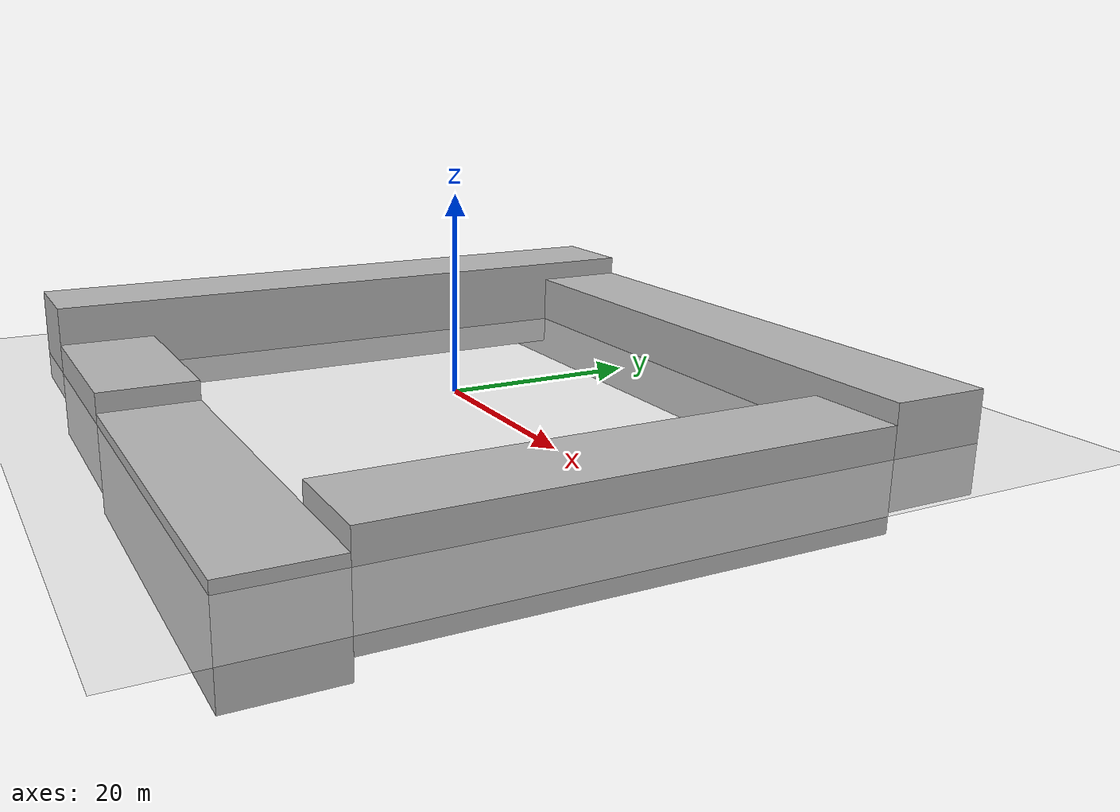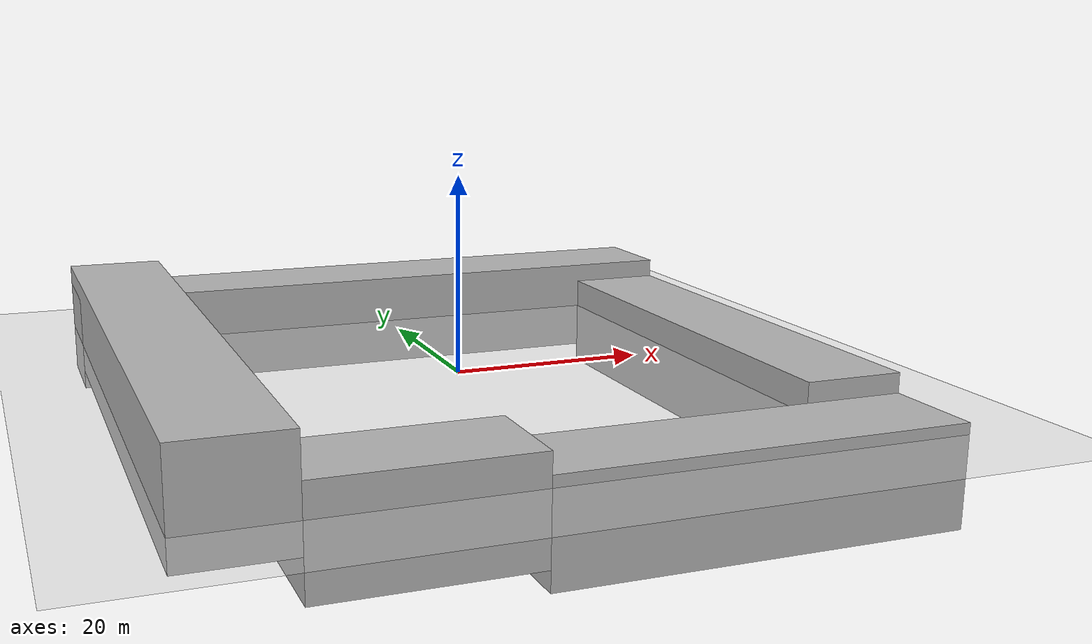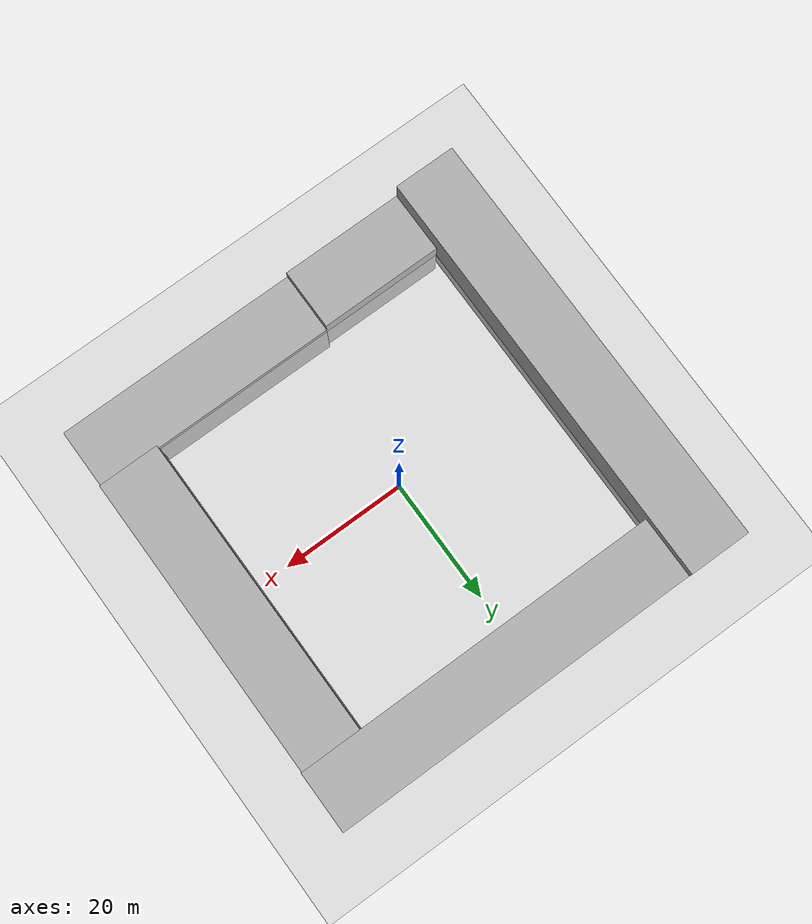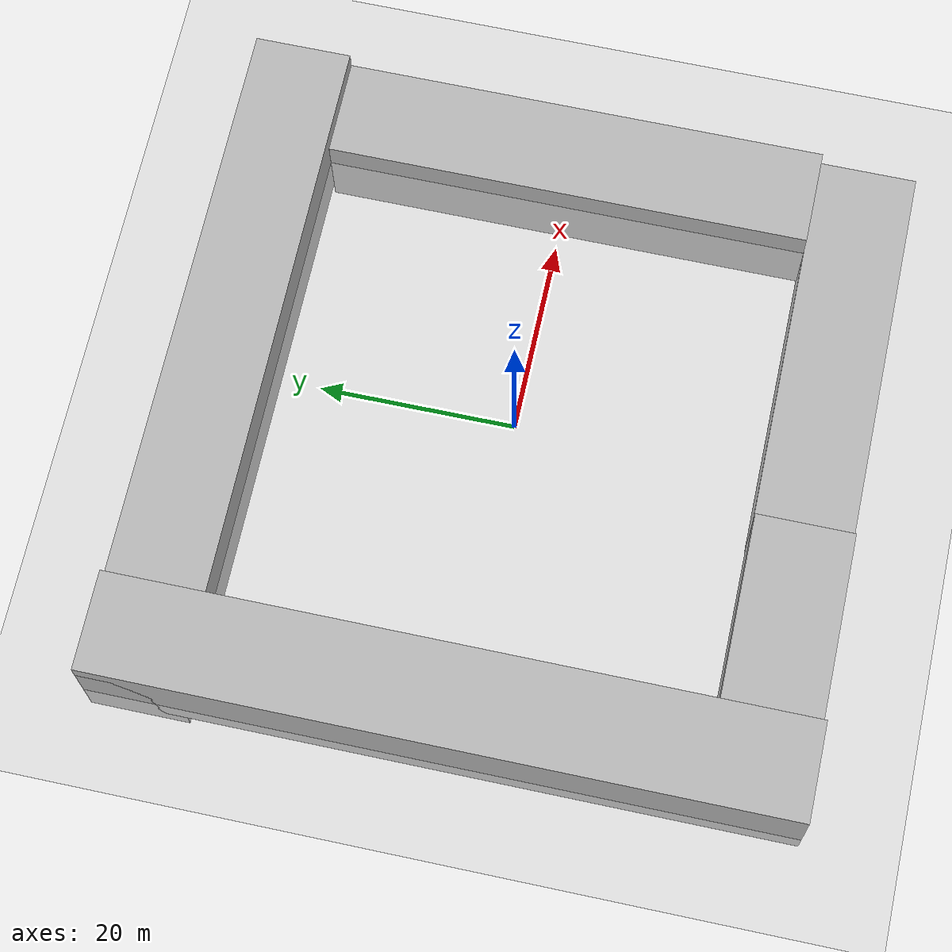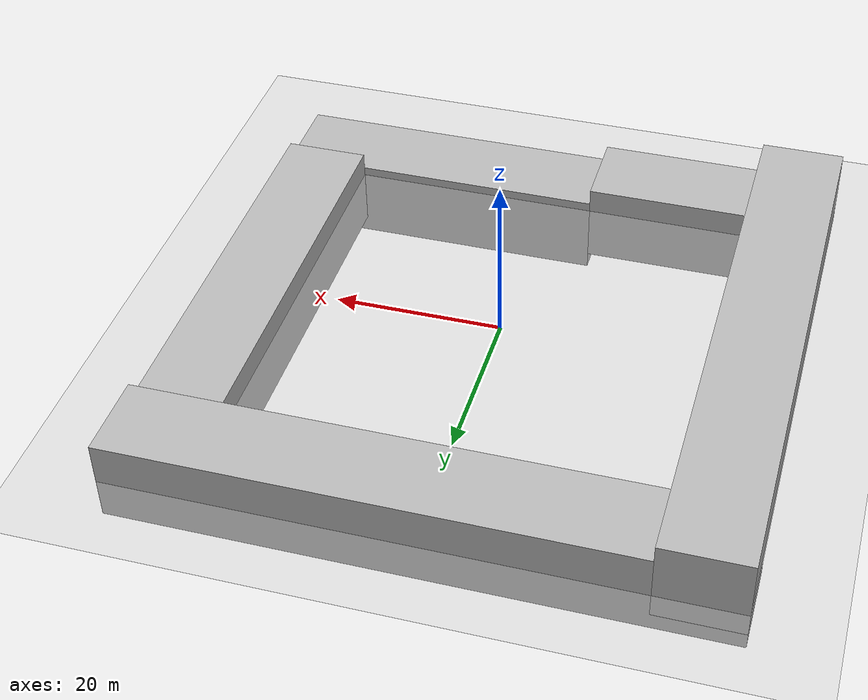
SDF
<sdf version="1.5">
 <world name="default">
  <scene><shadows>false</shadows></scene>
  <include><uri>model://sun</uri></include>
  <include><uri>model://ground_plane</uri></include>
  <include><uri>model://ground_plane</uri><pose>0 0 -0.01 0 0 0</pose></include>
  <model name="a1">
   <static>1</static>
   <link name="link">
    <collision name="collision"><geometry><box><size>40 10 10</size></box></geometry></collision>
    <visual name="visual"><geometry><box><size>40 10 10</size></box></geometry></visual>
   </link>
   <pose>15 -30 -4 0 -0 0</pose>
  </model>
  <model name="a2">
   <static>1</static>
   <link name="link">
    <collision name="collision"><geometry><box><size>10 50 10</size></box></geometry></collision>
    <visual name="visual"><geometry><box><size>10 50 10</size></box></geometry></visual>
   </link>
   <pose>30 0 -2 0 -0 0</pose>
  </model>
  <model name="a3">
   <static>1</static>
   <link name="link">
    <collision name="collision"><geometry><box><size>70 10 10</size></box></geometry></collision>
    <visual name="visual"><geometry><box><size>70 10 10</size></box></geometry></visual>
   </link>
   <pose>0 30 0 0 -0 0</pose>
  </model>
  <model name="a4">
   <static>1</static>
   <link name="link">
    <collision name="collision"><geometry><box><size>10 70 10</size></box></geometry></collision>
    <visual name="visual"><geometry><box><size>10 70 10</size></box></geometry></visual>
   </link>
   <pose>-30 0 2 0 -0 0</pose>
  </model>
  <model name="a5">
   <static>1</static>
   <link name="link">
    <collision name="collision"><geometry><box><size>20 10 10</size></box></geometry></collision>
    <visual name="visual"><geometry><box><size>20 10 10</size></box></geometry></visual>
   </link>
   <pose>-15 -30 -2 0 -0 0</pose>
  </model>
 </world>
</sdf>
